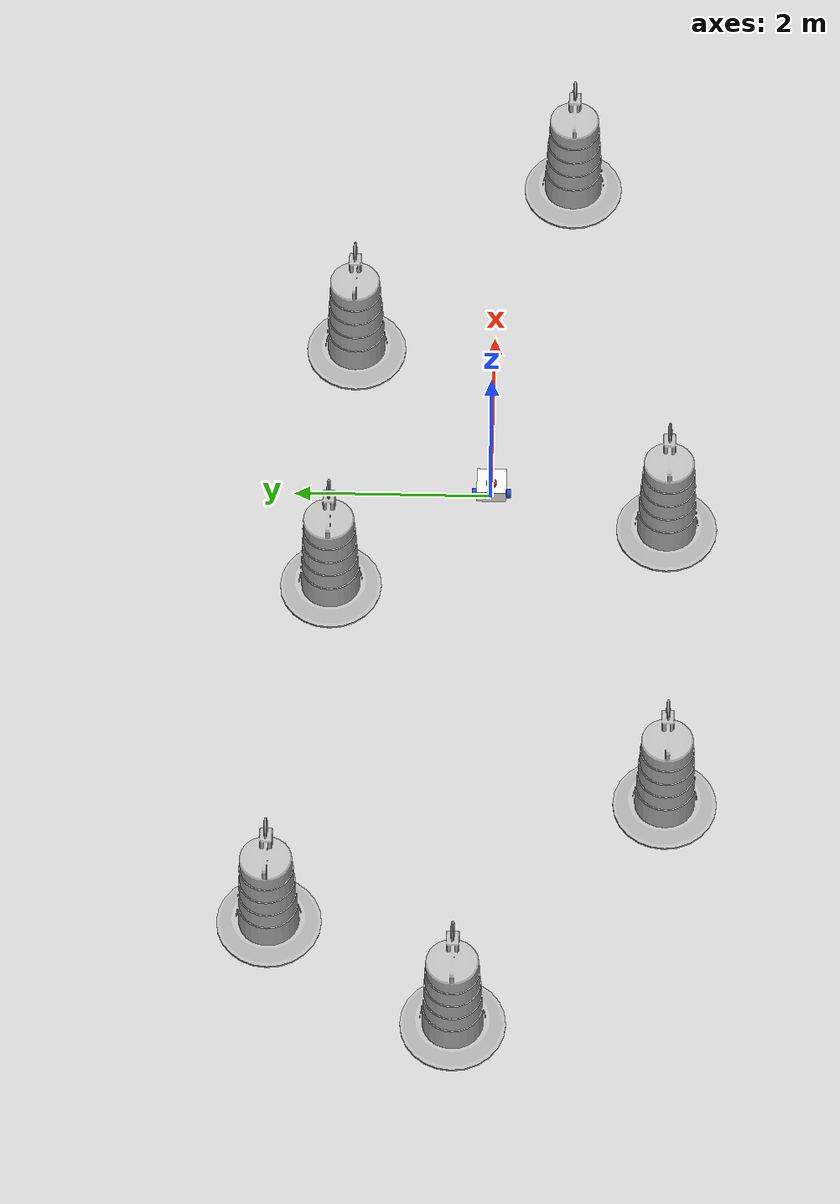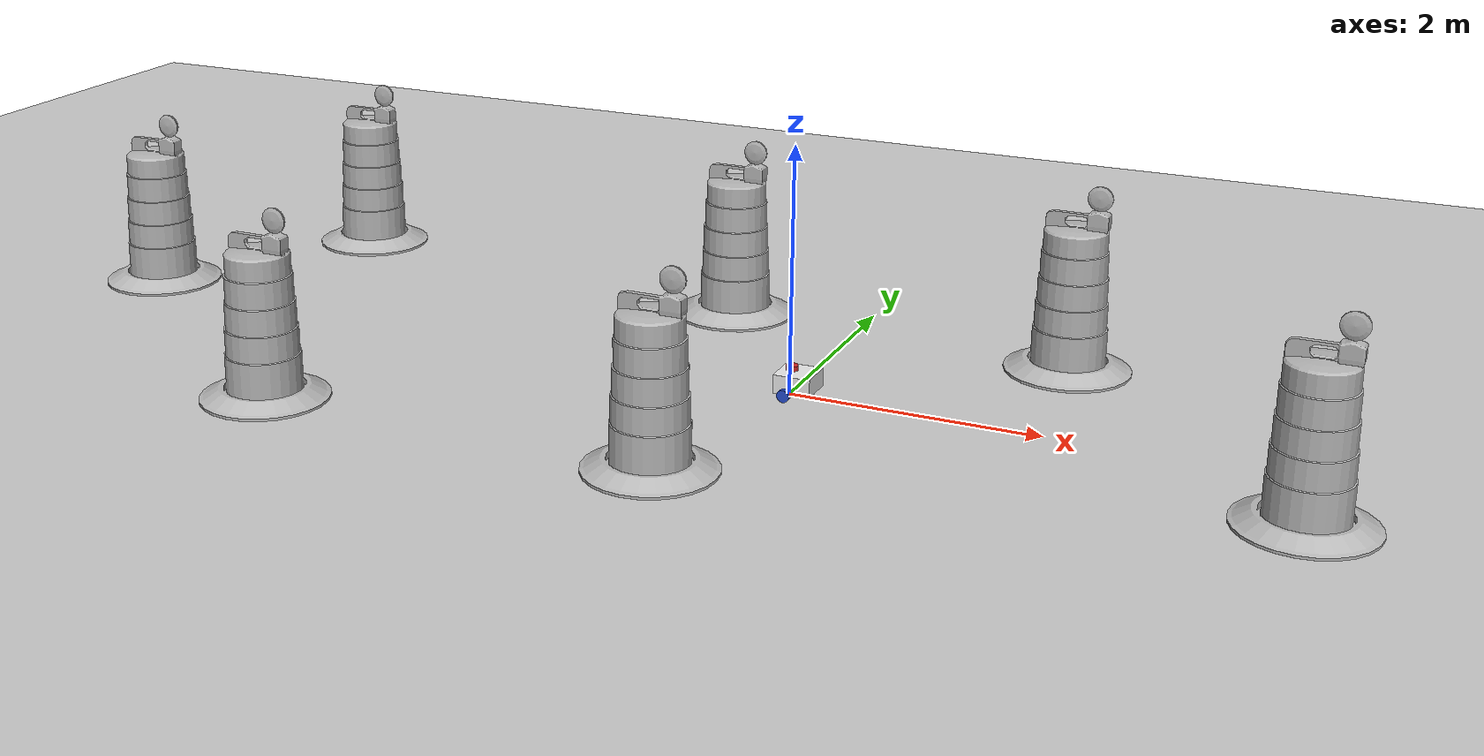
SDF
<sdf version="1.7">
 <world name="default">
  <light name="sun" type="directional">
   <pose>0 0 10 0 -0 0</pose>
   <diffuse>0.8 0.8 0.8 1</diffuse>
   <specular>0.2 0.2 0.2 1</specular>
   <attenuation>
    <range>1000</range>
    <constant>0.9</constant>
    <linear>0.01</linear>
    <quadratic>0.001</quadratic>
   </attenuation>
   <direction>-0.5 0.1 -0.9</direction>
   <spot><inner_angle>0</inner_angle><outer_angle>0</outer_angle><falloff>0</falloff></spot>
  </light>
  <model name="ground_plane">
   <static>1</static>
   <link name="link">
    <collision name="collision">
     <geometry><plane><normal>0 0 1</normal><size>100 100</size></plane></geometry>
     <surface>
      <contact><collide_bitmask>65535</collide_bitmask></contact>
      <friction><ode><mu>100</mu><mu2>50</mu2></ode></friction>
     </surface>
    </collision>
    <visual name="visual">
     <cast_shadows>0</cast_shadows>
     <geometry><plane><normal>0 0 1</normal><size>100 100</size></plane></geometry>
     <material>
      <script><uri>file://media/materials/scripts/gazebo.material</uri><name>Gazebo/Grey</name></script>
     </material>
    </visual>
   </link>
  </model>
  <gravity>0 0 -9.8</gravity>
  <magnetic_field>6e-06 2.3e-05 -4.2e-05</magnetic_field>
  <atmosphere type="adiabatic"/>
  <physics type="ode">
   <max_step_size>0.001</max_step_size>
   <real_time_factor>1</real_time_factor>
   <real_time_update_rate>1000</real_time_update_rate>
  </physics>
  <scene><ambient>0.4 0.4 0.4 1</ambient><background>0.7 0.7 0.7 1</background><shadows>1</shadows></scene>
  <spherical_coordinates>
   <surface_model>EARTH_WGS84</surface_model>
   <latitude_deg>0</latitude_deg>
   <longitude_deg>0</longitude_deg>
   <elevation>0</elevation>
   <heading_deg>0</heading_deg>
  </spherical_coordinates>
  <model name="diff_bot">
   <link name="base_link">
    <inertial>
     <pose>0.055714 0 0.078571 0 -0 0</pose>
     <mass>0.7</mass>
     <inertia>
      <ixx>0.0064169</ixx>
      <ixy>0</ixy>
      <ixz>0.00118929</ixz>
      <iyy>0.00745405</iyy>
      <iyz>0</iyz>
      <izz>0.00876214</izz>
     </inertia>
    </inertial>
    <collision name="base_link_fixed_joint_lump__chassis_collision">
     <pose>0.05 0 0.075 0 -0 0</pose>
     <geometry><box><size>0.3 0.3 0.15</size></box></geometry>
    </collision>
    <collision name="base_link_fixed_joint_lump__caster_wheel_collision_1">
     <pose>0.14 0 0 0 -0 0</pose>
     <geometry><sphere><radius>0.05</radius></sphere></geometry>
     <surface><friction><ode><mu>0.0001</mu><mu2>0.001</mu2></ode></friction></surface>
    </collision>
    <collision name="base_link_fixed_joint_lump__laser_frame_collision_2">
     <pose>0 0 0.175 0 -0 0</pose>
     <geometry><cylinder><length>0.04</length><radius>0.05</radius></cylinder></geometry>
    </collision>
    <visual name="base_link_fixed_joint_lump__chassis_visual">
     <pose>0.05 0 0.075 0 -0 0</pose>
     <geometry><box><size>0.3 0.3 0.15</size></box></geometry>
     <material>
      <script><name>Gazebo/White</name><uri>file://media/materials/scripts/gazebo.material</uri></script>
     </material>
    </visual>
    <visual name="base_link_fixed_joint_lump__caster_wheel_visual_1">
     <pose>0.14 0 0 0 -0 0</pose>
     <geometry><sphere><radius>0.05</radius></sphere></geometry>
     <material>
      <script><name>Gazebo/Black</name><uri>file://media/materials/scripts/gazebo.material</uri></script>
     </material>
    </visual>
    <visual name="base_link_fixed_joint_lump__laser_frame_visual_2">
     <pose>0 0 0.175 0 -0 0</pose>
     <geometry><cylinder><length>0.04</length><radius>0.05</radius></cylinder></geometry>
     <material>
      <script><name>Gazebo/Red</name><uri>file://media/materials/scripts/gazebo.material</uri></script>
     </material>
    </visual>
    <sensor name="top_lidar_sensor" type="ray">
     <visualize>1</visualize>
     <update_rate>10</update_rate>
     <ray>
      <scan>
       <horizontal>
        <samples>360</samples>
        <resolution>1</resolution>
        <min_angle>-3.14</min_angle>
        <max_angle>3.14</max_angle>
       </horizontal>
       <vertical><samples>1</samples><min_angle>0</min_angle><max_angle>0</max_angle></vertical>
      </scan>
      <range><min>0.1</min><max>12</max><resolution>0.01</resolution></range>
     </ray>
     <plugin name="top_lidar_controller" filename="libgazebo_ros_laser.so">
      <topicName>scan</topicName>
      <frameName>laser_frame</frameName>
      <robotNamespace>/</robotNamespace>
     </plugin>
     <pose>0 0 0.175 0 -0 0</pose>
    </sensor>
   </link>
   <joint name="left_wheel_joint" type="revolute">
    <pose relative_to="base_link">0 0.175 0 -1.5708 0 0</pose>
    <parent>base_link</parent>
    <child>left_wheel</child>
    <axis>
     <xyz>0 0 1</xyz>
     <limit><lower>-1e+16</lower><upper>1e+16</upper></limit>
     <dynamics><spring_reference>0</spring_reference><spring_stiffness>0</spring_stiffness></dynamics>
    </axis>
   </joint>
   <link name="left_wheel">
    <pose relative_to="left_wheel_joint">0 0 0 0 -0 0</pose>
    <inertial>
     <mass>0.1</mass>
     <inertia>
      <ixx>7.58333e-05</ixx>
      <ixy>0</ixy>
      <ixz>0</ixz>
      <iyy>7.58333e-05</iyy>
      <iyz>0</iyz>
      <izz>0.000125</izz>
     </inertia>
    </inertial>
    <collision name="left_wheel_collision">
     <geometry><cylinder><length>0.04</length><radius>0.05</radius></cylinder></geometry>
    </collision>
    <visual name="left_wheel_visual">
     <geometry><cylinder><length>0.04</length><radius>0.05</radius></cylinder></geometry>
     <material>
      <script><name>Gazebo/Blue</name><uri>file://media/materials/scripts/gazebo.material</uri></script>
     </material>
    </visual>
   </link>
   <joint name="right_wheel_joint" type="revolute">
    <pose relative_to="base_link">0 -0.175 0 1.5708 -0 0</pose>
    <parent>base_link</parent>
    <child>right_wheel</child>
    <axis>
     <xyz>0 0 -1</xyz>
     <limit><lower>-1e+16</lower><upper>1e+16</upper></limit>
     <dynamics><spring_reference>0</spring_reference><spring_stiffness>0</spring_stiffness></dynamics>
    </axis>
   </joint>
   <link name="right_wheel">
    <pose relative_to="right_wheel_joint">0 0 0 0 -0 0</pose>
    <inertial>
     <mass>0.1</mass>
     <inertia>
      <ixx>7.58333e-05</ixx>
      <ixy>0</ixy>
      <ixz>0</ixz>
      <iyy>7.58333e-05</iyy>
      <iyz>0</iyz>
      <izz>0.000125</izz>
     </inertia>
    </inertial>
    <collision name="right_wheel_collision">
     <geometry><cylinder><length>0.04</length><radius>0.05</radius></cylinder></geometry>
    </collision>
    <visual name="right_wheel_visual">
     <geometry><cylinder><length>0.04</length><radius>0.05</radius></cylinder></geometry>
     <material>
      <script><name>Gazebo/Blue</name><uri>file://media/materials/scripts/gazebo.material</uri></script>
     </material>
    </visual>
   </link>
   <static>0</static>
   <plugin name="diff_drive" filename="libgazebo_ros_diff_drive.so">
    <leftJoint>left_wheel_joint</leftJoint>
    <rightJoint>right_wheel_joint</rightJoint>
    <wheelSeparation>0.35</wheelSeparation>
    <wheelDiameter>0.1</wheelDiameter>
    <wheelAcceleration>1.0</wheelAcceleration>
    <wheelTorque>20</wheelTorque>
    <commandTopic>cmd_vel</commandTopic>
    <odometryTopic>odom</odometryTopic>
    <odometryFrame>odom</odometryFrame>
    <robotBaseFrame>base_link</robotBaseFrame>
    <odometrySource>1</odometrySource>
    <publishWheelTF>1</publishWheelTF>
    <publishOdom>1</publishOdom>
    <publishWheelJointState>1</publishWheelJointState>
    <robotNamespace>/</robotNamespace>
   </plugin>
   <pose>0.013047 3.1e-05 0.05 -0 1.2e-05 -0.002679</pose>
  </model>
  <model name="Construction Barrel">
   <link name="link">
    <inertial>
     <pose>0 0 0.4 0 -0 0</pose>
     <mass>500</mass>
     <inertia><ixx>51.2096</ixx><iyy>51.2096</iyy><izz>25</izz><ixy>0</ixy><ixz>0</ixz><iyz>0</iyz></inertia>
    </inertial>
    <collision name="collision">
     <geometry><mesh><uri>model://construction_barrel/meshes/construction_barrel.dae</uri></mesh></geometry>
    </collision>
    <visual name="visual">
     <geometry><mesh><uri>model://construction_barrel/meshes/construction_barrel.dae</uri></mesh></geometry>
    </visual>
   </link>
   <pose>-1.13306 1.59274 1e-06 3e-06 2e-06 -1.4e-05</pose>
  </model>
  <model name="Construction Barrel_0">
   <link name="link">
    <inertial>
     <pose>0 0 0.4 0 -0 0</pose>
     <mass>500</mass>
     <inertia><ixx>51.2096</ixx><iyy>51.2096</iyy><izz>25</izz><ixy>0</ixy><ixz>0</ixz><iyz>0</iyz></inertia>
    </inertial>
    <collision name="collision">
     <geometry><mesh><uri>model://construction_barrel/meshes/construction_barrel.dae</uri></mesh></geometry>
    </collision>
    <visual name="visual">
     <geometry><mesh><uri>model://construction_barrel/meshes/construction_barrel.dae</uri></mesh></geometry>
    </visual>
   </link>
   <pose>-0.372356 -1.7803 -1e-06 0 5e-06 -1e-05</pose>
  </model>
  <model name="Construction Barrel_1">
   <link name="link">
    <inertial>
     <pose>0 0 0.4 0 -0 0</pose>
     <mass>500</mass>
     <inertia><ixx>51.2096</ixx><iyy>51.2096</iyy><izz>25</izz><ixy>0</ixy><ixz>0</ixz><iyz>0</iyz></inertia>
    </inertial>
    <collision name="collision">
     <geometry><mesh><uri>model://construction_barrel/meshes/construction_barrel.dae</uri></mesh></geometry>
    </collision>
    <visual name="visual">
     <geometry><mesh><uri>model://construction_barrel/meshes/construction_barrel.dae</uri></mesh></geometry>
    </visual>
   </link>
   <pose>-3.6666 -1.77839 -2e-06 -0 7e-06 -8e-06</pose>
  </model>
  <model name="Construction Barrel_2">
   <link name="link">
    <inertial>
     <pose>0 0 0.4 0 -0 0</pose>
     <mass>500</mass>
     <inertia><ixx>51.2096</ixx><iyy>51.2096</iyy><izz>25</izz><ixy>0</ixy><ixz>0</ixz><iyz>0</iyz></inertia>
    </inertial>
    <collision name="collision">
     <geometry><mesh><uri>model://construction_barrel/meshes/construction_barrel.dae</uri></mesh></geometry>
    </collision>
    <visual name="visual">
     <geometry><mesh><uri>model://construction_barrel/meshes/construction_barrel.dae</uri></mesh></geometry>
    </visual>
   </link>
   <pose>3.97448 -0.774649 -1e-06 3e-06 1e-05 -7e-06</pose>
  </model>
  <model name="Construction Barrel_3">
   <link name="link">
    <inertial>
     <pose>0 0 0.4 0 -0 0</pose>
     <mass>500</mass>
     <inertia><ixx>51.2096</ixx><iyy>51.2096</iyy><izz>25</izz><ixy>0</ixy><ixz>0</ixz><iyz>0</iyz></inertia>
    </inertial>
    <collision name="collision">
     <geometry><mesh><uri>model://construction_barrel/meshes/construction_barrel.dae</uri></mesh></geometry>
    </collision>
    <visual name="visual">
     <geometry><mesh><uri>model://construction_barrel/meshes/construction_barrel.dae</uri></mesh></geometry>
    </visual>
   </link>
   <pose>-5.09882 2.04929 1e-06 2e-06 3e-06 -6e-06</pose>
  </model>
  <model name="Construction Barrel_4">
   <link name="link">
    <inertial>
     <pose>0 0 0.4 0 -0 0</pose>
     <mass>500</mass>
     <inertia><ixx>51.2096</ixx><iyy>51.2096</iyy><izz>25</izz><ixy>0</ixy><ixz>0</ixz><iyz>0</iyz></inertia>
    </inertial>
    <collision name="collision">
     <geometry><mesh><uri>model://construction_barrel/meshes/construction_barrel.dae</uri></mesh></geometry>
    </collision>
    <visual name="visual">
     <geometry><mesh><uri>model://construction_barrel/meshes/construction_barrel.dae</uri></mesh></geometry>
    </visual>
   </link>
   <pose>-6.20364 0.238915 0 0 0 -3e-06</pose>
  </model>
  <model name="Construction Barrel_5">
   <link name="link">
    <inertial>
     <pose>0 0 0.4 0 -0 0</pose>
     <mass>500</mass>
     <inertia><ixx>51.2096</ixx><iyy>51.2096</iyy><izz>25</izz><ixy>0</ixy><ixz>0</ixz><iyz>0</iyz></inertia>
    </inertial>
    <collision name="collision">
     <geometry><mesh><uri>model://construction_barrel/meshes/construction_barrel.dae</uri></mesh></geometry>
    </collision>
    <visual name="visual">
     <geometry><mesh><uri>model://construction_barrel/meshes/construction_barrel.dae</uri></mesh></geometry>
    </visual>
   </link>
   <pose>1.82623 1.43294 -1e-06 3e-06 -2e-06 -2e-06</pose>
  </model>
 </world>
</sdf>
